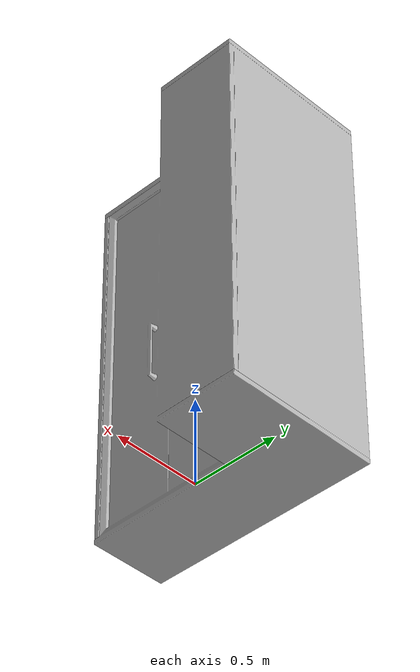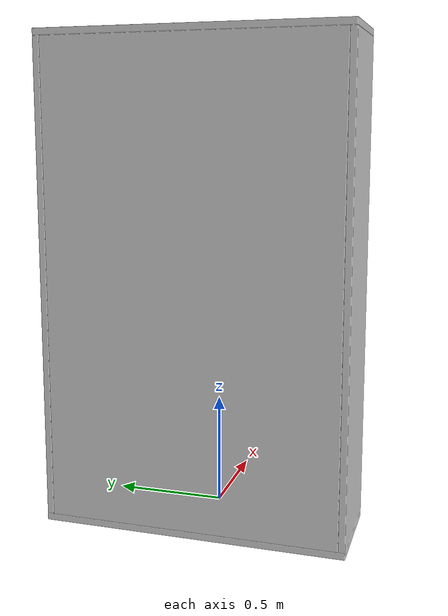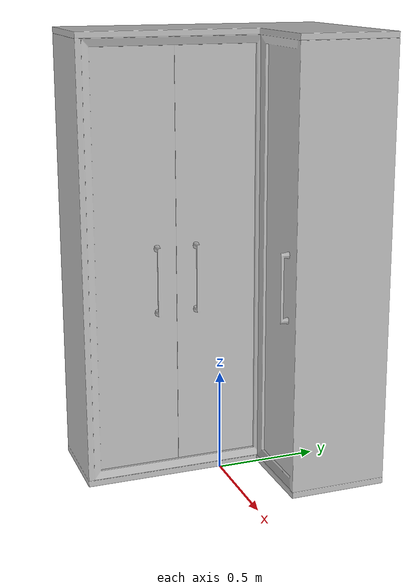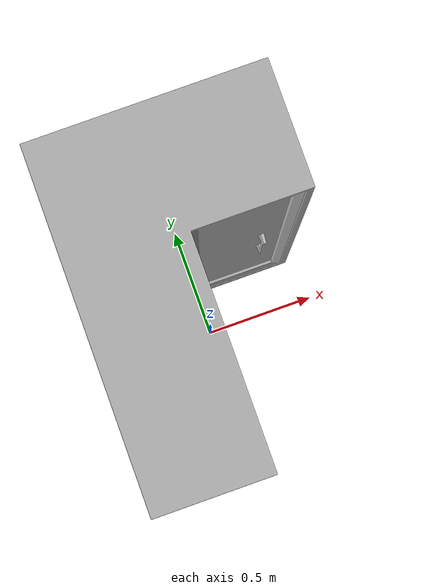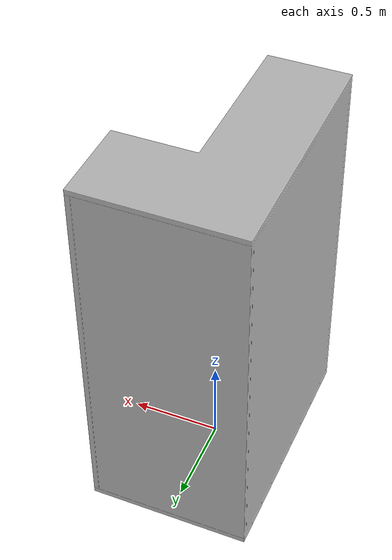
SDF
<?xml version='1.0'?>
<sdf version='1.4'>
  <model name='187'>
    <pose>0 0 0 0 0 0</pose>
    <static>true</static>
    <link name='link'>
      <collision name='collision'>
        <pose>0 0 0 0 0 0</pose>
        <geometry>
          <box>
            <size>0.899921 1.35 2</size>
          </box>
        </geometry>
      </collision>
      <visual name='visual'>
        <pose>0 0 0 0 0 0</pose>
        <geometry>
          <mesh><uri>model://187/187.dae</uri></mesh>
        </geometry>
      </visual>
    </link>
  </model>
</sdf>
